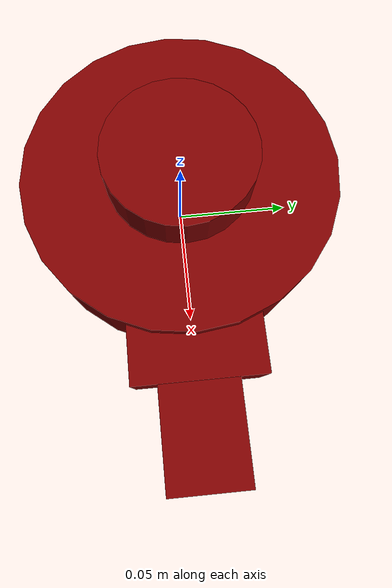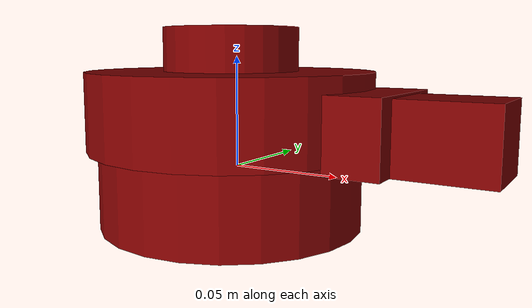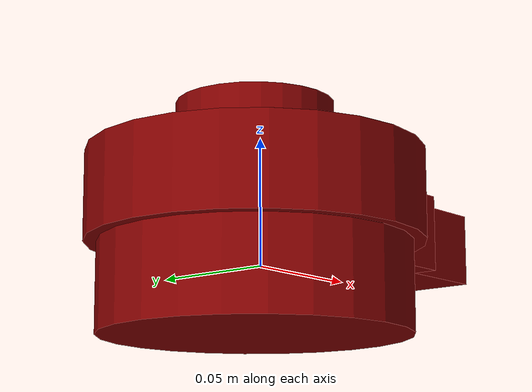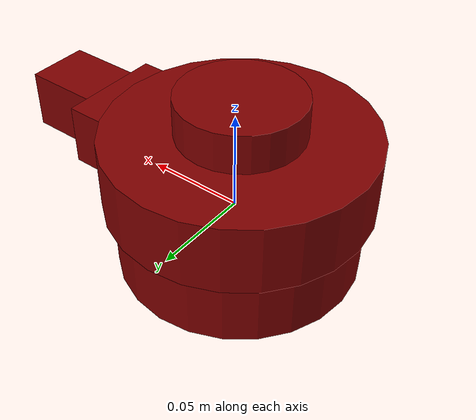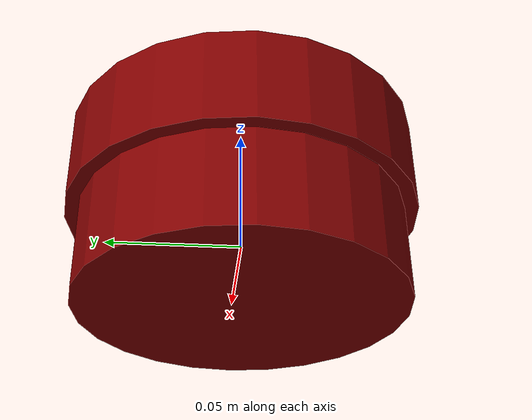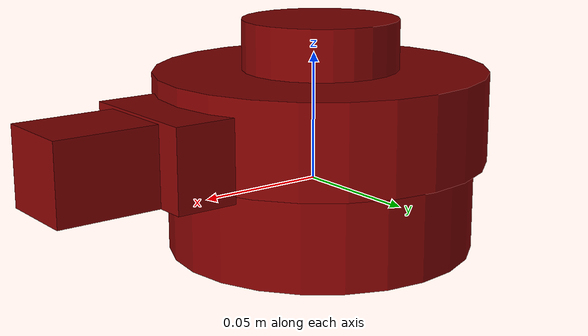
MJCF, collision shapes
<mujoco model="model">
  <option timestep="0.002" gravity="0.0 0.0 -9.81"/>
  <compiler angle="radian"/>
  <asset>
    <texture file="visuals/T_BC001.png" name="lid_material" type="2d"/>
    <material name="lid_material" rgba="1 1 1 1.0" texture="lid_material" shininess="0.4472135901451111" specular="0.3103448502657381"/>
    <mesh file="visuals/lid.obj" name="lid_vis"/>
  </asset>
  <default>
    <default class="visual">
      <geom conaffinity="0" contype="0" group="1" type="mesh"/>
    </default>
    <default class="collision">
      <geom group="0" rgba="0.5 0 0 0.5"/>
    </default>
    <default class="spawn">
      <geom group="0" rgba="1 1 1 0.5" contype="0" conaffinity="0"/>
      <site group="0" rgba="1 1 1 0.5"/>
    </default>
    <default class="region">
      <geom group="1" conaffinity="0" contype="0" rgba="0 1 0 0"/>
    </default>
  </default>
  <worldbody>
    <body>
      <body name="object">
        <geom mesh="lid_vis" type="mesh" solimp="0.998 0.998 0.001" solref="0.001 1" friction="0.95 0.3 0.1" class="visual" material="lid_material"/>
        <geom class="collision" name="handle_main" type="cylinder" pos="-0.003195752839780507 6.559697437998491e-05 0.05243788088165588" size="0.03057319112122059 0.010535256937146187" quat="1.0 0.0 0.0 0.0" density="1000.0"/>
        <geom class="collision" type="cylinder" pos="-0.003195752839780507 6.559697437998491e-05 0.0259271049" size="0.06502468883991241 0.017549634" quat="1.0 0.0 0.0 0.0" density="1000.0"/>
        <geom class="collision" type="cylinder" pos="-0.003195752839780507 6.559697437998491e-05 -0.00917216312" size="0.06002468883991241 0.017549634" quat="1.0 0.0 0.0 0.0" density="1000.0"/>
        <geom class="collision" type="box" pos="0.0670907271602195 0.00020555697437998465 0.021123520881655866" size="0.01173425279557705 0.026565389707684517 0.015394516289234161" quat="1.0 0.0 0.0 0.0" density="1000.0"/>
        <geom class="collision" type="box" pos="0.09675667716021949 -0.00030647302562001547 0.020619280881655877" size="0.020895959809422493 0.01577948033809662 0.01489027589559555" quat="1.0 0.0 0.0 0.0" density="1000.0"/>
      </body>
      <geom class="region" name="reg_main" density="0" type="box" pos="0.01691835 -4.899999999988247e-07 0.019929580000000002" size="0.1054925 0.08164550000000001 0.0451945"/>
    </body>
  </worldbody>
</mujoco>
